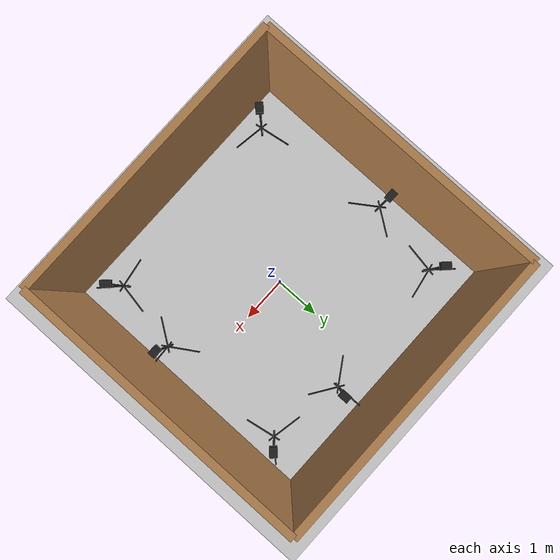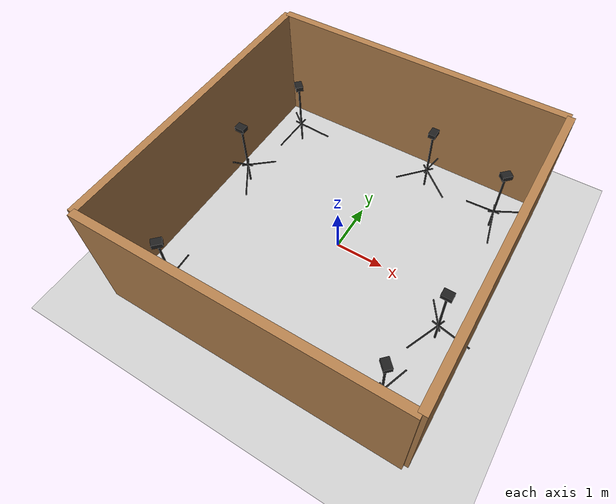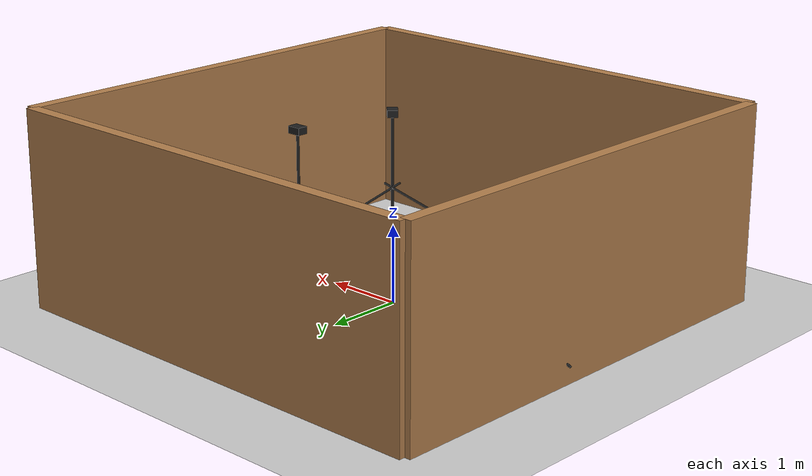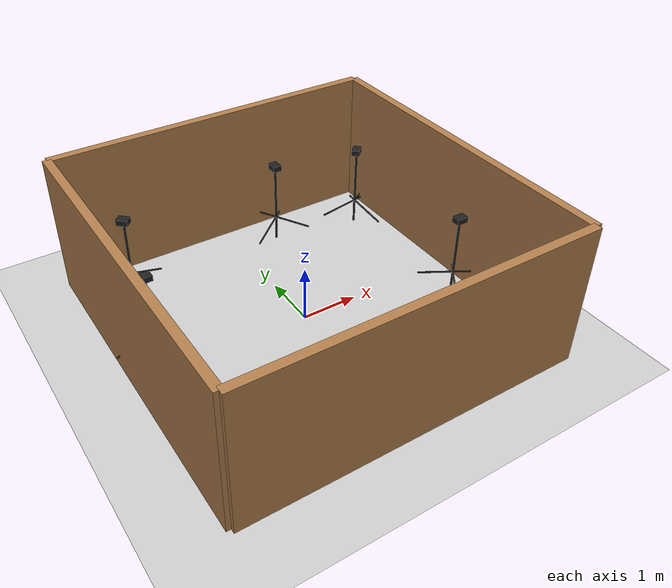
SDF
<?xml version="1.0" ?>
<sdf version="1.7">
  <world name="camera_setup_room">
    <!-- Physics Engine Configuration -->
    <physics type="ode">
      <max_step_size>0.001</max_step_size>
      <real_time_factor>1.0</real_time_factor>
      <real_time_update_rate>1000</real_time_update_rate>
      <ode>
        <solver>
          <type>world</type>
          <iters>200</iters>
          <sor>1.3</sor>
          <use_dynamic_moi_rescaling>false</use_dynamic_moi_rescaling>
        </solver>
        <constraints>
          <cfm>0.0</cfm>
          <erp>0.2</erp>
          <contact_max_correcting_vel>100</contact_max_correcting_vel>
          <contact_surface_layer>0.001</contact_surface_layer>
        </constraints>
      </ode>
    </physics>

    <!-- Essential Gazebo System Plugins -->
    <plugin
      filename="libgz-sim-physics-system.so"
      name="gz::sim::systems::Physics">
    </plugin>
    <plugin
      filename="libgz-sim-user-commands-system.so"
      name="gz::sim::systems::UserCommands">
    </plugin>
    <plugin
      filename="libgz-sim-scene-broadcaster-system.so"
      name="gz::sim::systems::SceneBroadcaster">
    </plugin>
    <plugin
      filename="libgz-sim-sensors-system.so"
      name="gz::sim::systems::Sensors">
      <render_engine>ogre2</render_engine>
    </plugin>
    <plugin
      filename="libgz-sim-imu-system.so"
      name="gz::sim::systems::Imu">
    </plugin>

    <!-- ROS 2 Integration Plugins -->
    <plugin
      filename="libgazebo_ros_init.so"
      name="gazebo_ros_init">
    </plugin>
    <plugin
      filename="libgazebo_ros_factory.so"
      name="gazebo_ros_factory">
    </plugin>

    <!-- Scene Lighting and Background -->
    <scene>
      <ambient>0.8 0.8 0.8 1.0</ambient>
      <background>0.7 0.8 0.9 1.0</background>
      <shadows>true</shadows>
    </scene>

    <light type="directional" name="sun">
      <cast_shadows>true</cast_shadows>
      <pose>0 0 10 0 0 0</pose>
      <diffuse>0.8 0.8 0.8 1</diffuse>
      <specular>0.2 0.2 0.2 1</specular>
      <attenuation>
        <range>1000</range>
        <constant>0.9</constant>
        <linear>0.01</linear>
        <quadratic>0.001</quadratic>
      </attenuation>
      <direction>-0.5 0.1 -0.9</direction>
    </light>

    <model name="ground_plane">
      <static>true</static>
      <link name="link">
        <collision name="collision">
          <geometry>
            <plane>
              <normal>0 0 1</normal>
              <size>100 100</size>
            </plane>
          </geometry>
          <surface>
            <friction>
              <ode>
                <mu>100</mu>
                <mu2>50</mu2>
              </ode>
            </friction>
          </surface>
        </collision>
        <visual name="visual">
          <cast_shadows>false</cast_shadows>
          <geometry>
            <plane>
              <normal>0 0 1</normal>
              <size>100 100</size>
            </plane>
          </geometry>
          <material>
            <script>
              <uri>file://media/materials/scripts/gazebo.material</uri>
              <name>Gazebo/Grey</name>
            </script>
          </material>
        </visual>
      </link>
    </model>

    <!-- Walls (6x6 meter room) -->
    <model name='walls'>
      <static>true</static>
      <pose>0 0 0 0 -0 0</pose>
      <link name='wall_north'><pose>0 3 1.25 0 0 0</pose><collision name='c'><geometry><box><size>6 0.15 2.5</size></box></geometry></collision><visual name='v'><geometry><box><size>6 0.15 2.5</size></box></geometry><material><script><uri>file://media/materials/scripts/gazebo.material</uri><name>Gazebo/Wood</name></script></material></visual></link>
      <link name='wall_south'><pose>0 -3 1.25 0 0 0</pose><collision name='c'><geometry><box><size>6 0.15 2.5</size></box></geometry></collision><visual name='v'><geometry><box><size>6 0.15 2.5</size></box></geometry><material><script><uri>file://media/materials/scripts/gazebo.material</uri><name>Gazebo/Wood</name></script></material></visual></link>
      <link name='wall_east'><pose>3 0 1.25 0 0 1.5707</pose><collision name='c'><geometry><box><size>6 0.15 2.5</size></box></geometry></collision><visual name='v'><geometry><box><size>6 0.15 2.5</size></box></geometry><material><script><uri>file://media/materials/scripts/gazebo.material</uri><name>Gazebo/Wood</name></script></material></visual></link>
      <link name='wall_west'><pose>-3 0 1.25 0 0 1.5707</pose><collision name='c'><geometry><box><size>6 0.15 2.5</size></box></geometry></collision><visual name='v'><geometry><box><size>6 0.15 2.5</size></box></geometry><material><script><uri>file://media/materials/scripts/gazebo.material</uri><name>Gazebo/Wood</name></script></material></visual></link>
    </model>

    <!-- Camera Equipment Models -->
    <model name='camera_setup_1'>
      <static>true</static>
      <pose>-2.2 2.1 0 0 0 2.356</pose>
      <link name='tripod_center_pole'><pose>0 0 0.75 0 0 0</pose><collision name='c'><geometry><cylinder><radius>0.02</radius><length>1.5</length></cylinder></geometry></collision><visual name='v'><geometry><cylinder><radius>0.02</radius><length>1.5</length></cylinder></geometry><material><script><uri>file://media/materials/scripts/gazebo.material</uri><name>Gazebo/Black</name></script></material></visual></link>
      <link name='camera_body'><pose>0 0 1.55 0 0 0</pose><collision name='c'><geometry><box><size>0.2 0.15 0.1</size></box></geometry></collision><visual name='v'><geometry><box><size>0.2 0.15 0.1</size></box></geometry><material><script><uri>file://media/materials/scripts/gazebo.material</uri><name>Gazebo/Black</name></script></material></visual></link>
      <link name='tripod_leg_1'><pose>0.25 0 0.375 0 -1.2 0</pose><collision name='c'><geometry><cylinder><radius>0.015</radius><length>0.8</length></cylinder></geometry></collision><visual name='v'><geometry><cylinder><radius>0.015</radius><length>0.8</length></cylinder></geometry><material><script><uri>file://media/materials/scripts/gazebo.material</uri><name>Gazebo/Black</name></script></material></visual></link>
      <link name='tripod_leg_2'><pose>-0.125 0.216 0.375 0 -1.2 2.09</pose><collision name='c'><geometry><cylinder><radius>0.015</radius><length>0.8</length></cylinder></geometry></collision><visual name='v'><geometry><cylinder><radius>0.015</radius><length>0.8</length></cylinder></geometry><material><script><uri>file://media/materials/scripts/gazebo.material</uri><name>Gazebo/Black</name></script></material></visual></link>
      <link name='tripod_leg_3'><pose>-0.125 -0.216 0.375 0 -1.2 -2.09</pose><collision name='c'><geometry><cylinder><radius>0.015</radius><length>0.8</length></cylinder></geometry></collision><visual name='v'><geometry><cylinder><radius>0.015</radius><length>0.8</length></cylinder></geometry><material><script><uri>file://media/materials/scripts/gazebo.material</uri><name>Gazebo/Black</name></script></material></visual></link>
    </model>

    <model name='camera_setup_2'>
        <static>true</static>
        <pose>0.8 2.3 0 0 0 1.57</pose>
        <link name='tripod_center_pole'><pose>0 0 0.75 0 0 0</pose><collision name='c'><geometry><cylinder><radius>0.02</radius><length>1.5</length></cylinder></geometry></collision><visual name='v'><geometry><cylinder><radius>0.02</radius><length>1.5</length></cylinder></geometry><material><script><uri>file://media/materials/scripts/gazebo.material</uri><name>Gazebo/Black</name></script></material></visual></link>
        <link name='camera_body'><pose>0 0 1.55 0 0 0</pose><collision name='c'><geometry><box><size>0.2 0.15 0.1</size></box></geometry></collision><visual name='v'><geometry><box><size>0.2 0.15 0.1</size></box></geometry><material><script><uri>file://media/materials/scripts/gazebo.material</uri><name>Gazebo/Black</name></script></material></visual></link>
        <link name='tripod_leg_1'><pose>0.25 0 0.375 0 -1.2 0</pose><collision name='c'><geometry><cylinder><radius>0.015</radius><length>0.8</length></cylinder></geometry></collision><visual name='v'><geometry><cylinder><radius>0.015</radius><length>0.8</length></cylinder></geometry><material><script><uri>file://media/materials/scripts/gazebo.material</uri><name>Gazebo/Black</name></script></material></visual></link>
        <link name='tripod_leg_2'><pose>-0.125 0.216 0.375 0 -1.2 2.09</pose><collision name='c'><geometry><cylinder><radius>0.015</radius><length>0.8</length></cylinder></geometry></collision><visual name='v'><geometry><cylinder><radius>0.015</radius><length>0.8</length></cylinder></geometry><material><script><uri>file://media/materials/scripts/gazebo.material</uri><name>Gazebo/Black</name></script></material></visual></link>
        <link name='tripod_leg_3'><pose>-0.125 -0.216 0.375 0 -1.2 -2.09</pose><collision name='c'><geometry><cylinder><radius>0.015</radius><length>0.8</length></cylinder></geometry></collision><visual name='v'><geometry><cylinder><radius>0.015</radius><length>0.8</length></cylinder></geometry><material><script><uri>file://media/materials/scripts/gazebo.material</uri><name>Gazebo/Black</name></script></material></visual></link>
    </model>

    <model name='camera_setup_3'>
      <static>true</static>
      <pose>2.4 2.0 0 0 0 0.785</pose>
      <link name='tripod_center_pole'><pose>0 0 0.75 0 0 0</pose><collision name='c'><geometry><cylinder><radius>0.02</radius><length>1.5</length></cylinder></geometry></collision><visual name='v'><geometry><cylinder><radius>0.02</radius><length>1.5</length></cylinder></geometry><material><script><uri>file://media/materials/scripts/gazebo.material</uri><name>Gazebo/Black</name></script></material></visual></link>
      <link name='camera_body'><pose>0 0 1.55 0 0 0</pose><collision name='c'><geometry><box><size>0.2 0.15 0.1</size></box></geometry></collision><visual name='v'><geometry><box><size>0.2 0.15 0.1</size></box></geometry><material><script><uri>file://media/materials/scripts/gazebo.material</uri><name>Gazebo/Black</name></script></material></visual></link>
      <link name='tripod_leg_1'><pose>0.25 0 0.375 0 -1.2 0</pose><collision name='c'><geometry><cylinder><radius>0.015</radius><length>0.8</length></cylinder></geometry></collision><visual name='v'><geometry><cylinder><radius>0.015</radius><length>0.8</length></cylinder></geometry><material><script><uri>file://media/materials/scripts/gazebo.material</uri><name>Gazebo/Black</name></script></material></visual></link>
      <link name='tripod_leg_2'><pose>-0.125 0.216 0.375 0 -1.2 2.09</pose><collision name='c'><geometry><cylinder><radius>0.015</radius><length>0.8</length></cylinder></geometry></collision><visual name='v'><geometry><cylinder><radius>0.015</radius><length>0.8</length></cylinder></geometry><material><script><uri>file://media/materials/scripts/gazebo.material</uri><name>Gazebo/Black</name></script></material></visual></link>
      <link name='tripod_leg_3'><pose>-0.125 -0.216 0.375 0 -1.2 -2.09</pose><collision name='c'><geometry><cylinder><radius>0.015</radius><length>0.8</length></cylinder></geometry></collision><visual name='v'><geometry><cylinder><radius>0.015</radius><length>0.8</length></cylinder></geometry><material><script><uri>file://media/materials/scripts/gazebo.material</uri><name>Gazebo/Black</name></script></material></visual></link>
    </model>

    <model name='camera_setup_4'>
        <static>true</static>
        <pose>-2.5 0.5 0 0 0 3.14</pose>
        <link name='tripod_center_pole'><pose>0 0 0.75 0 0 0</pose><collision name='c'><geometry><cylinder><radius>0.02</radius><length>1.5</length></cylinder></geometry></collision><visual name='v'><geometry><cylinder><radius>0.02</radius><length>1.5</length></cylinder></geometry><material><script><uri>file://media/materials/scripts/gazebo.material</uri><name>Gazebo/Black</name></script></material></visual></link>
        <link name='camera_body'><pose>0 0 1.55 0 0 0</pose><collision name='c'><geometry><box><size>0.2 0.15 0.1</size></box></geometry></collision><visual name='v'><geometry><box><size>0.2 0.15 0.1</size></box></geometry><material><script><uri>file://media/materials/scripts/gazebo.material</uri><name>Gazebo/Black</name></script></material></visual></link>
        <link name='tripod_leg_1'><pose>0.25 0 0.375 0 -1.2 0</pose><collision name='c'><geometry><cylinder><radius>0.015</radius><length>0.8</length></cylinder></geometry></collision><visual name='v'><geometry><cylinder><radius>0.015</radius><length>0.8</length></cylinder></geometry><material><script><uri>file://media/materials/scripts/gazebo.material</uri><name>Gazebo/Black</name></script></material></visual></link>
        <link name='tripod_leg_2'><pose>-0.125 0.216 0.375 0 -1.2 2.09</pose><collision name='c'><geometry><cylinder><radius>0.015</radius><length>0.8</length></cylinder></geometry></collision><visual name='v'><geometry><cylinder><radius>0.015</radius><length>0.8</length></cylinder></geometry><material><script><uri>file://media/materials/scripts/gazebo.material</uri><name>Gazebo/Black</name></script></material></visual></link>
        <link name='tripod_leg_3'><pose>-0.125 -0.216 0.375 0 -1.2 -2.09</pose><collision name='c'><geometry><cylinder><radius>0.015</radius><length>0.8</length></cylinder></geometry></collision><visual name='v'><geometry><cylinder><radius>0.015</radius><length>0.8</length></cylinder></geometry><material><script><uri>file://media/materials/scripts/gazebo.material</uri><name>Gazebo/Black</name></script></material></visual></link>
    </model>

    <model name='camera_setup_5'>
        <static>true</static>
        <pose>2.5 -0.8 0 0 0 0.0</pose>
        <link name='tripod_center_pole'><pose>0 0 0.75 0 0 0</pose><collision name='c'><geometry><cylinder><radius>0.02</radius><length>1.5</length></cylinder></geometry></collision><visual name='v'><geometry><cylinder><radius>0.02</radius><length>1.5</length></cylinder></geometry><material><script><uri>file://media/materials/scripts/gazebo.material</uri><name>Gazebo/Black</name></script></material></visual></link>
        <link name='camera_body'><pose>0 0 1.55 0 0 0</pose><collision name='c'><geometry><box><size>0.2 0.15 0.1</size></box></geometry></collision><visual name='v'><geometry><box><size>0.2 0.15 0.1</size></box></geometry><material><script><uri>file://media/materials/scripts/gazebo.material</uri><name>Gazebo/Black</name></script></material></visual></link>
        <link name='tripod_leg_1'><pose>0.25 0 0.375 0 -1.2 0</pose><collision name='c'><geometry><cylinder><radius>0.015</radius><length>0.8</length></cylinder></geometry></collision><visual name='v'><geometry><cylinder><radius>0.015</radius><length>0.8</length></cylinder></geometry><material><script><uri>file://media/materials/scripts/gazebo.material</uri><name>Gazebo/Black</name></script></material></visual></link>
        <link name='tripod_leg_2'><pose>-0.125 0.216 0.375 0 -1.2 2.09</pose><collision name='c'><geometry><cylinder><radius>0.015</radius><length>0.8</length></cylinder></geometry></collision><visual name='v'><geometry><cylinder><radius>0.015</radius><length>0.8</length></cylinder></geometry><material><script><uri>file://media/materials/scripts/gazebo.material</uri><name>Gazebo/Black</name></script></material></visual></link>
        <link name='tripod_leg_3'><pose>-0.125 -0.216 0.375 0 -1.2 -2.09</pose><collision name='c'><geometry><cylinder><radius>0.015</radius><length>0.8</length></cylinder></geometry></collision><visual name='v'><geometry><cylinder><radius>0.015</radius><length>0.8</length></cylinder></geometry><material><script><uri>file://media/materials/scripts/gazebo.material</uri><name>Gazebo/Black</name></script></material></visual></link>
    </model>

    <model name='camera_setup_6'>
        <static>true</static>
        <pose>-2.1 -2.4 0 0 0 -2.356</pose>
        <link name='tripod_center_pole'><pose>0 0 0.75 0 0 0</pose><collision name='c'><geometry><cylinder><radius>0.02</radius><length>1.5</length></cylinder></geometry></collision><visual name='v'><geometry><cylinder><radius>0.02</radius><length>1.5</length></cylinder></geometry><material><script><uri>file://media/materials/scripts/gazebo.material</uri><name>Gazebo/Black</name></script></material></visual></link>
        <link name='camera_body'><pose>0 0 1.55 0 0 0</pose><collision name='c'><geometry><box><size>0.2 0.15 0.1</size></box></geometry></collision><visual name='v'><geometry><box><size>0.2 0.15 0.1</size></box></geometry><material><script><uri>file://media/materials/scripts/gazebo.material</uri><name>Gazebo/Black</name></script></material></visual></link>
        <link name='tripod_leg_1'><pose>0.25 0 0.375 0 -1.2 0</pose><collision name='c'><geometry><cylinder><radius>0.015</radius><length>0.8</length></cylinder></geometry></collision><visual name='v'><geometry><cylinder><radius>0.015</radius><length>0.8</length></cylinder></geometry><material><script><uri>file://media/materials/scripts/gazebo.material</uri><name>Gazebo/Black</name></script></material></visual></link>
        <link name='tripod_leg_2'><pose>-0.125 0.216 0.375 0 -1.2 2.09</pose><collision name='c'><geometry><cylinder><radius>0.015</radius><length>0.8</length></cylinder></geometry></collision><visual name='v'><geometry><cylinder><radius>0.015</radius><length>0.8</length></cylinder></geometry><material><script><uri>file://media/materials/scripts/gazebo.material</uri><name>Gazebo/Black</name></script></material></visual></link>
        <link name='tripod_leg_3'><pose>-0.125 -0.216 0.375 0 -1.2 -2.09</pose><collision name='c'><geometry><cylinder><radius>0.015</radius><length>0.8</length></cylinder></geometry></collision><visual name='v'><geometry><cylinder><radius>0.015</radius><length>0.8</length></cylinder></geometry><material><script><uri>file://media/materials/scripts/gazebo.material</uri><name>Gazebo/Black</name></script></material></visual></link>
    </model>

    <model name='camera_setup_7'>
        <static>true</static>
        <pose>2.2 -2.3 0 0 0 -0.785</pose>
        <link name='tripod_center_pole'><pose>0 0 0.75 0 0 0</pose><collision name='c'><geometry><cylinder><radius>0.02</radius><length>1.5</length></cylinder></geometry></collision><visual name='v'><geometry><cylinder><radius>0.02</radius><length>1.5</length></cylinder></geometry><material><script><uri>file://media/materials/scripts/gazebo.material</uri><name>Gazebo/Black</name></script></material></visual></link>
        <link name='camera_body'><pose>0 0 1.55 0 0 0</pose><collision name='c'><geometry><box><size>0.2 0.15 0.1</size></box></geometry></collision><visual name='v'><geometry><box><size>0.2 0.15 0.1</size></box></geometry><material><script><uri>file://media/materials/scripts/gazebo.material</uri><name>Gazebo/Black</name></script></material></visual></link>
        <link name='tripod_leg_1'><pose>0.25 0 0.375 0 -1.2 0</pose><collision name='c'><geometry><cylinder><radius>0.015</radius><length>0.8</length></cylinder></geometry></collision><visual name='v'><geometry><cylinder><radius>0.015</radius><length>0.8</length></cylinder></geometry><material><script><uri>file://media/materials/scripts/gazebo.material</uri><name>Gazebo/Black</name></script></material></visual></link>
        <link name='tripod_leg_2'><pose>-0.125 0.216 0.375 0 -1.2 2.09</pose><collision name='c'><geometry><cylinder><radius>0.015</radius><length>0.8</length></cylinder></geometry></collision><visual name='v'><geometry><cylinder><radius>0.015</radius><length>0.8</length></cylinder></geometry><material><script><uri>file://media/materials/scripts/gazebo.material</uri><name>Gazebo/Black</name></script></material></visual></link>
        <link name='tripod_leg_3'><pose>-0.125 -0.216 0.375 0 -1.2 -2.09</pose><collision name='c'><geometry><cylinder><radius>0.015</radius><length>0.8</length></cylinder></geometry></collision><visual name='v'><geometry><cylinder><radius>0.015</radius><length>0.8</length></cylinder></geometry><material><script><uri>file://media/materials/scripts/gazebo.material</uri><name>Gazebo/Black</name></script></material></visual></link>
    </model>

  </world>
</sdf>
